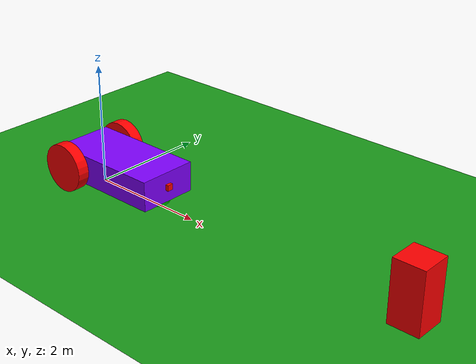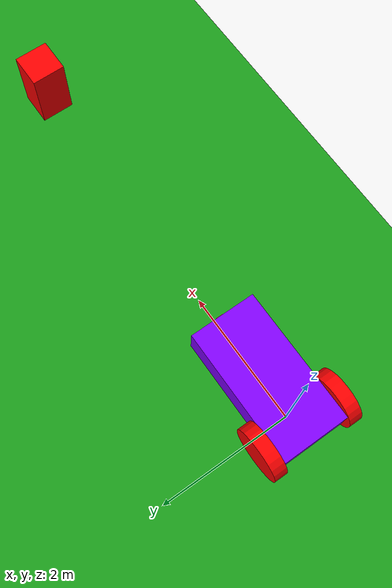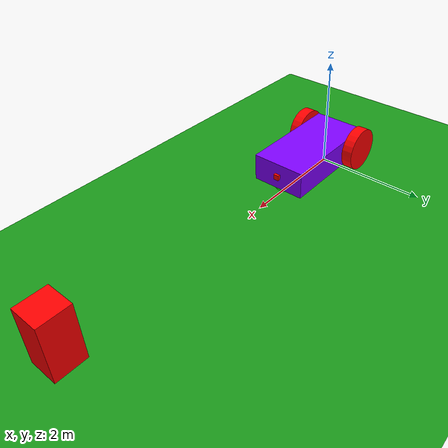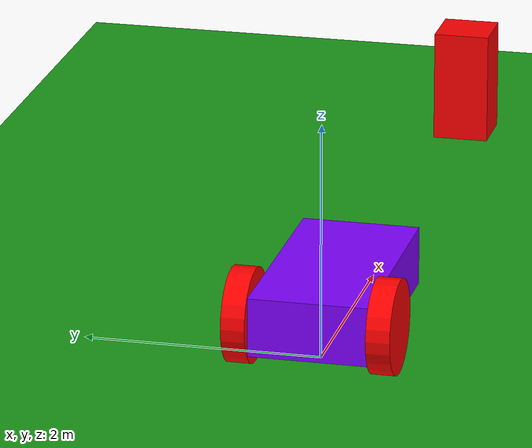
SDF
<?xml version="1.0" ?>
<sdf version="1.9">
  <!--  WORLD: cena, física, plugins essenciais                               -->
  <world name="explore_world">
    <scene>
      <ambient>0.4 0.4 0.4 1</ambient>
      <background>0.6 0.8 0.6 1</background>
      <shadows>true</shadows>
    </scene>
    <gravity>0 0 -9.8</gravity>

    <plugin filename="libignition-gazebo-physics-system.so"
            name="ignition::gazebo::systems::Physics"/>
    <plugin filename="libignition-gazebo-user-commands-system.so"
            name="ignition::gazebo::systems::UserCommands"/>
    <plugin filename="libignition-gazebo-scene-broadcaster-system.so"
            name="ignition::gazebo::systems::SceneBroadcaster"/>
    <plugin filename="libignition-gazebo-sensors-system.so" name="ignition::gazebo::systems::Sensors">
        <render_engine>ogre2</render_engine>
    </plugin>

    <!--  CHÃO E ILUMINAÇÃO                                                  -->
    <model name="ground_plane">
      <static>true</static>
      <link name="link">
        <collision name="collision">
          <geometry>
            <plane><normal>0 0 1</normal><size>50 50</size></plane>
          </geometry>
        </collision>
        <visual name="visual">
          <geometry>
            <plane><normal>0 0 1</normal><size>50 50</size></plane>
          </geometry>
          <material>
            <ambient>0.1 0.4 0.1 1</ambient>
            <diffuse>0.1 0.6 0.1 1</diffuse>
            <specular>0 0 0 1</specular>
          </material>
        </visual>
      </link>
    </model>

    <!-- Obstáculo com COLLISION (o LiDAR enxerga colisão, não o visual) -->
    <model name="box_obstacle">
      <static>true</static>
      <pose>6 0 0.5 0 0 0</pose> <!-- centro z=0.5; altura=1.0 -->
      <link name="link">
        <collision name="col">
          <geometry><box><size>0.5 0.5 1.0</size></box></geometry>
        </collision>
        <visual name="vis">
          <geometry><box><size>0.5 0.5 1.0</size></box></geometry>
          <material><diffuse>1 0 0 1</diffuse></material>
        </visual>
      </link>
    </model>

    <!-- Luz direcional simples -->
    <light name="sun" type="directional">
      <pose>0 0 10 0 0 0</pose>
      <direction>-0.5 0.1 -1</direction>
      <diffuse>0.8 0.8 0.8 1</diffuse>
      <specular>0.2 0.2 0.2 1</specular>
      <cast_shadows>true</cast_shadows>
    </light>

    <!--  ROBÔ DIFFERENTIAL: chassi, rodas, sensores e plugin DiffDrive      -->
    <model name='vehicle_blue' canonical_link='base_link'>
                <link name='base_link'>
                    <pose relative_to='__model__'>0.5 0 0.4 0 0 0</pose>
                    <inertial> <!--inertial properties of the link mass, inertia matix-->
                        <mass>1.14395</mass>
                        <inertia>
                            <ixx>0.095329</ixx>
                            <ixy>0</ixy>
                            <ixz>0</ixz>
                            <iyy>0.381317</iyy>
                            <iyz>0</iyz>
                            <izz>0.476646</izz>
                        </inertia>
                    </inertial>
                    <visual name='visual'>
                        <geometry>
                            <box>
                                <size>2.0 1.0 0.5</size>
                            </box>
                        </geometry>
                        <!--let's add color to our link-->
                        <material>
                            <ambient>0.0 1.0 0.0 1</ambient>
                            <diffuse>0.5 0.0 1.0 1</diffuse>
                            <specular>1.0 0.0 0.5 1</specular>
                        </material>
                    </visual>
                    <collision name='collision'>
                        <geometry>
                            <box>
                                <size>2.0 1.0 0.5</size>
                            </box>
                        </geometry>
                    </collision>

                    <sensor name="imu_sensor" type="imu">
                        <always_on>1</always_on>
                        <update_rate>1</update_rate>
                        <visualize>true</visualize>
                        <topic>imu</topic>
                    </sensor>

                    <sensor name='gpu_lidar' type='gpu_lidar'>"
			<pose relative_to='lidar_frame'>0 0 0 0 0 0</pose>
		        <topic>/lidar</topic>
		        <update_rate>10</update_rate>
		        <ray>
			    <scan>
			        <horizontal>
		                    <samples>640</samples>
		                    <resolution>1</resolution>
		                    <min_angle>-1.396263</min_angle>
		                    <max_angle>1.396263</max_angle>
		                </horizontal>
		                <vertical>
		                    <samples>1</samples>
		                    <resolution>0.01</resolution>
		                    <min_angle>0</min_angle>
		                    <max_angle>0</max_angle>
		                </vertical>
		            </scan>
		            <range>
		                <min>0.08</min>
		                <max>10.0</max>
		                <resolution>0.01</resolution>
		            </range>
		        </ray>
		        <always_on>1</always_on>
		        <visualize>true</visualize>
		    </sensor>

	            <sensor type="camera" name="camera">
	                <pose relative_to="base_link">1 0 0 0 0 0</pose>
	                <topic>/camera/image_raw</topic>
        	        <update_rate>30.0</update_rate>
	                <camera name="head">
	                    <horizontal_fov>1.3962634</horizontal_fov>
	                    <image>
	                        <width>800</width>
	                        <height>800</height>
	                        <format>R8G8B8</format>
	                    </image>
	                    <clip>
	                        <near>0.02</near>
	                        <far>300</far>
	                    </clip>
	                    <noise>
	                        <type>gaussian</type>
	                        <mean>0.0</mean>
	                        <stddev>0.007</stddev>
	                    </noise>
	                </camera>
	            </sensor>

                </link>

                <frame name="caster_frame" attached_to='base_link'>
                    <pose>0.8 0 -0.2 0 0 0</pose>
                </frame>

                <frame name="lidar_frame" attached_to='base_link'>
                    <pose>0.8 0 0.5 0 0 0</pose>
                </frame>

        <!--FIM DO CHASSI-->

        <!--COMEÇO DA CAMERA-->
            <link name="camera">
                <pose relative_to="base_link">1 0 0 0 0 0</pose>
                <visual name='visual'>
                    <geometry>
                        <box>
                            <size>0.1 0.1 0.1</size>
                        </box>
                    </geometry>
                    <material>
                        <ambient>1.0 0.0 0.0 1</ambient>
                        <diffuse>1.0 0.0 0.0 1</diffuse>
                        <specular>1.0 0.0 0.0 1</specular>
                    </material>
                </visual>
                <collision name='collision'>
                    <geometry>
                        <box>
                            <size>0.1 0.1 0.1</size>
                        </box>
                    </geometry>
                </collision>
                <inertial>
                    <mass>0.1</mass>
                    <inertia>
                        <ixx>0.043333</ixx>
                        <ixy>0</ixy>
                        <ixz>0</ixz>
                        <iyy>0.043333</iyy>
                        <iyz>0</iyz>
                        <izz>0.08</izz>
                    </inertia>
                </inertial>
            </link>

            <joint name='camera_joint' type="fixed">
                <origin xyz="1 0 0" rpy="0 0 0"/>
                <parent>base_link</parent>
                <child>camera</child>
            </joint>

        <!--FIM DA CAMERA-->

        <!--COMEÇO DAS RODAS-->
            <link name='roda_esquerda'>
                <pose relative_to="base_link">-0.7 0.6 0 -1.5707 0 0</pose>
                <inertial>
                    <mass>1</mass>
                    <inertia>
                        <ixx>0.043333</ixx>
                        <ixy>0</ixy>
                        <ixz>0</ixz>
                        <iyy>0.043333</iyy>
                        <iyz>0</iyz>
                        <izz>0.08</izz>
                    </inertia>
                </inertial>
                <visual name='visual'>
                    <geometry>
                        <cylinder>
                            <radius>0.4</radius>
                            <length>0.2</length>
                        </cylinder>
                    </geometry>
                    <material>
                        <ambient>1.0 0.0 0.0 1</ambient>
                        <diffuse>1.0 0.0 0.0 1</diffuse>
                        <specular>1.0 0.0 0.0 1</specular>
                    </material>
                </visual>
                <collision name='collision'>
                    <geometry>
                        <cylinder>
                            <radius>0.4</radius>
                            <length>0.2</length>
                        </cylinder>
                    </geometry>
                </collision>
            </link>

            <link name='roda_direita'>
                <pose relative_to="base_link">-0.7 -0.6 0 -1.5707 0 0</pose>
                <inertial>
                    <mass>1</mass>
                    <inertia>
                        <ixx>0.043333</ixx>
                        <ixy>0</ixy>
                        <ixz>0</ixz>
                        <iyy>0.043333</iyy>
                        <iyz>0</iyz>
                        <izz>0.08</izz>
                    </inertia>
                </inertial>
                <visual name='visual'>
                    <geometry>
                        <cylinder>
                            <radius>0.4</radius>
                            <length>0.2</length>
                        </cylinder>
                    </geometry>
                    <material>
                        <ambient>1.0 0.0 0.0 1</ambient>
                        <diffuse>1.0 0.0 0.0 1</diffuse>
                        <specular>1.0 0.0 0.0 1</specular>
                    </material>
                </visual>
                <collision name='collision'>
                    <geometry>
                        <cylinder>
                            <radius>0.4</radius>
                            <length>0.2</length>
                        </cylinder>
                    </geometry>
                </collision>
            </link>

            <link name='caster'>
                <pose relative_to='caster_frame'/>
                <inertial>
                    <mass>1</mass>
                    <inertia>
                        <ixx>0.016</ixx>
                        <ixy>0</ixy>
                        <ixz>0</ixz>
                        <iyy>0.016</iyy>
                        <iyz>0</iyz>
                        <izz>0.016</izz>
                    </inertia>
                </inertial>
                <visual name='visual'>
                    <geometry>
                        <sphere>
                            <radius>0.2</radius>
                        </sphere>
                    </geometry>
                    <material>
                        <ambient>0.0 1 0.0 1</ambient>
                        <diffuse>0.0 1 0.0 1</diffuse>
                        <specular>0.0 1 0.0 1</specular>
                    </material>
                </visual>
                <collision name='collision'>
                    <geometry>
                        <sphere>
                            <radius>0.2</radius>
                        </sphere>
                    </geometry>
                </collision>
            </link>

        <!--FIM DAS RODAS-->

        <!--COMEÇO DAS JUNTAS-->
            <joint name='junta_roda_esquerda' type='revolute'>
                <pose relative_to='roda_esquerda'/>
                <parent>base_link</parent>
                <child>roda_esquerda</child>
                <axis>
                    <xyz expressed_in='__model__'>0 1 0</xyz>
                    <limit>
                        <lower>-1.79769e+308</lower>
                        <upper>1.79769e+308</upper>
                    </limit>
                </axis>
            </joint>

            <joint name='junta_roda_direita' type='revolute'>
                <pose relative_to='roda_direita'/>
                <parent>base_link</parent>
                <child>roda_direita</child>
                <axis>
                    <xyz expressed_in='__model__'>0 1 0</xyz>
                    <limit>
                        <lower>-1.79769e+308</lower>
                        <upper>1.79769e+308</upper>
                    </limit>
                </axis>
            </joint>

            <joint name='caster_wheel' type='ball'>
                <parent>base_link</parent>
                <child>caster</child>
            </joint>
        <!--FIM DAS JUNTAS-->

        <!--INICIO DOS PLUGINS DO MODELO-->
            <plugin
                filename="libignition-gazebo-diff-drive-system.so"
                name="ignition::gazebo::systems::DiffDrive">
                <left_joint>junta_roda_esquerda</left_joint>
                <right_joint>junta_roda_direita</right_joint>
                <wheel_separation>1.2</wheel_separation>
                <wheel_radius>0.4</wheel_radius>
                <odom_publish_frequency>1</odom_publish_frequency>
                <topic>/cmd_vel</topic>
            </plugin>

            <plugin filename="libignition-gazebo-triggered-publisher-system.so"
                name="ignition::gazebo::systems::TriggeredPublisher">
                <input type="ignition.msgs.Boolean" topic="/wall/touched">
                    <match>data: true</match>
                </input>
                <output type="ignition.msgs.Twist" topic="/cmd_vel">
                    linear: {x: 0.0}, angular: {z: 0.0}
                </output>
            </plugin>
        <!--FIM DOS PLUGINS DO MODELO-->
        </model>

  </world>
</sdf>
